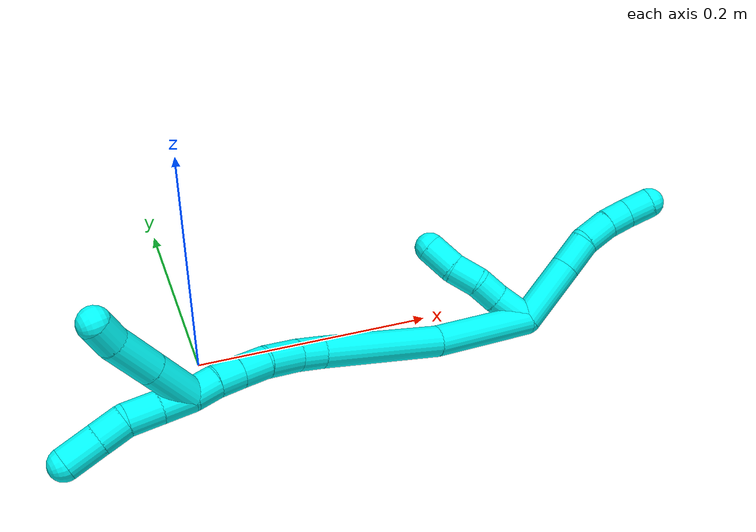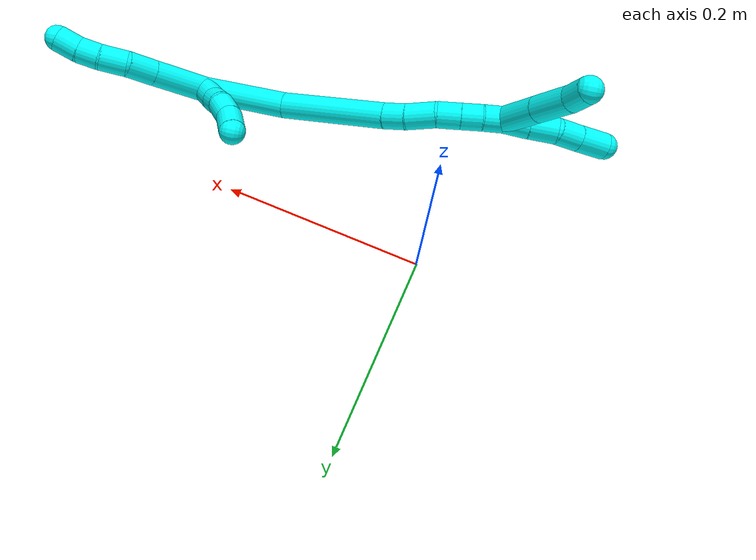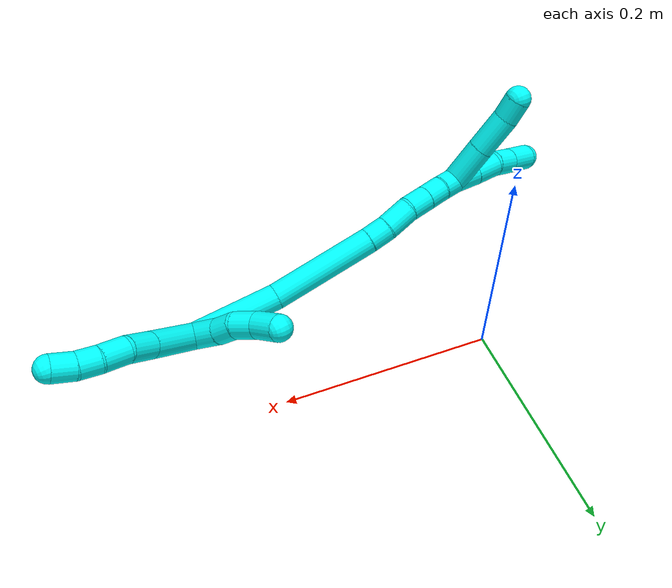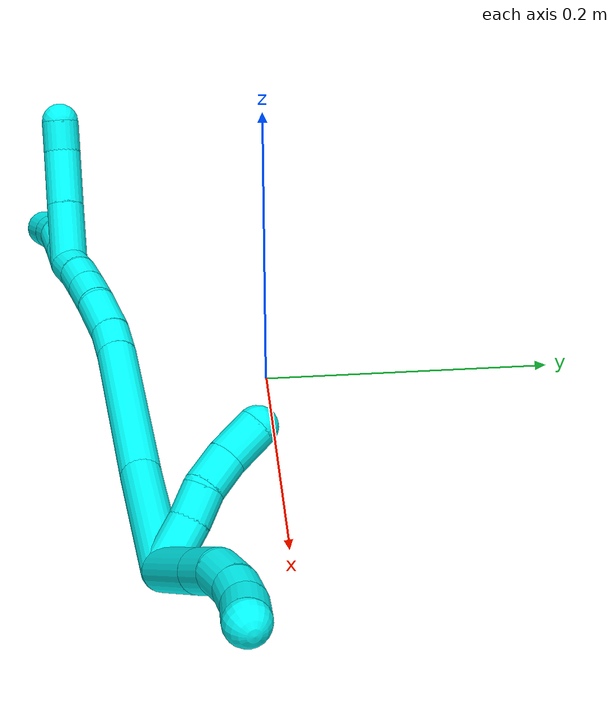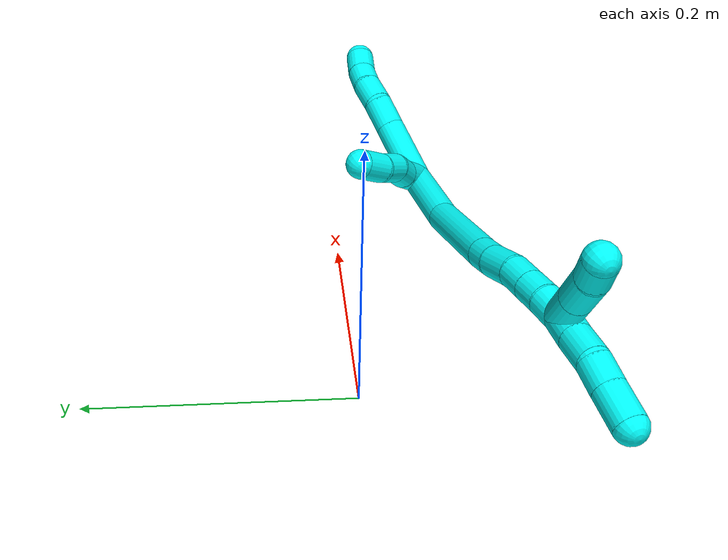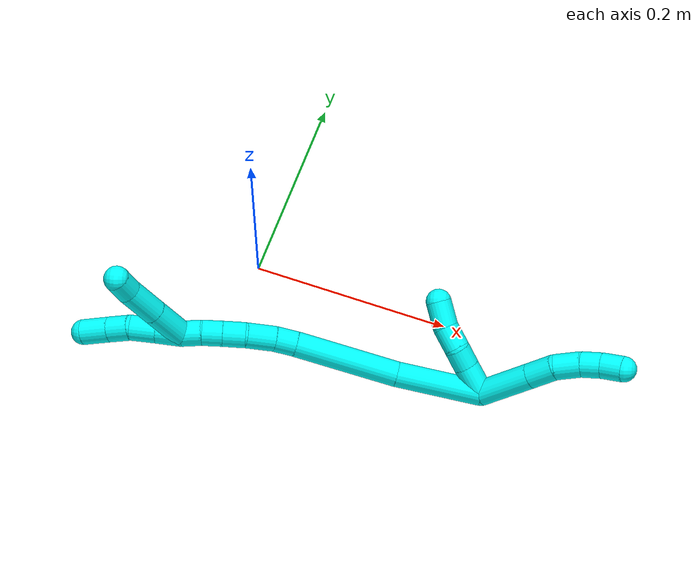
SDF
<sdf version="1.7">
 <world name="default">
  <model name="3">
   <static>0</static>
   <link name="3">
    <collision name="collision-cylinder-e_1_2_8">
     <pose>-0.011624 0.007881 0.023738 -0.32054 -0.43503 0.071425</pose>
     <geometry><cylinder><radius>0.0125</radius><length>0.055161</length></cylinder></geometry>
     <surface>
      <friction><ode><mu>1.16</mu><mu2>1.16</mu2><slip1>0</slip1><slip2>0</slip2></ode></friction>
      <contact><ode><kp>1e+06</kp><kd>1</kd><max_vel>0</max_vel><min_depth>0.001</min_depth></ode></contact>
     </surface>
    </collision>
    <visual name="visual-cylinder-e_1_2_8">
     <pose>-0.011624 0.007881 0.023738 -0.32054 -0.43503 0.071425</pose>
     <geometry><cylinder><radius>0.0125</radius><length>0.055161</length></cylinder></geometry>
     <material><ambient>0.003922 1 0.996078 1</ambient></material>
    </visual>
    <collision name="collision-cylinder-e_2_8_9">
     <pose>-0.029123 0.019607 0.059077 -0.320095 -0.448094 0.073537</pose>
     <geometry><cylinder><radius>0.0125</radius><length>0.027123</length></cylinder></geometry>
     <surface>
      <friction><ode><mu>1.16</mu><mu2>1.16</mu2><slip1>0</slip1><slip2>0</slip2></ode></friction>
      <contact><ode><kp>1e+06</kp><kd>1</kd><max_vel>0</max_vel><min_depth>0.001</min_depth></ode></contact>
     </surface>
    </collision>
    <visual name="visual-cylinder-e_2_8_9">
     <pose>-0.029123 0.019607 0.059077 -0.320095 -0.448094 0.073537</pose>
     <geometry><cylinder><radius>0.0125</radius><length>0.027123</length></cylinder></geometry>
     <material><ambient>0.003922 1 0.996078 1</ambient></material>
    </visual>
    <collision name="collision-cylinder-e_3_9_10">
     <pose>-0.037426 0.025231 0.083221 -0.140814 -0.189348 0.013393</pose>
     <geometry><cylinder><radius>0.0125</radius><length>0.025797</length></cylinder></geometry>
     <surface>
      <friction><ode><mu>1.16</mu><mu2>1.16</mu2><slip1>0</slip1><slip2>0</slip2></ode></friction>
      <contact><ode><kp>1e+06</kp><kd>1</kd><max_vel>0</max_vel><min_depth>0.001</min_depth></ode></contact>
     </surface>
    </collision>
    <visual name="visual-cylinder-e_3_9_10">
     <pose>-0.037426 0.025231 0.083221 -0.140814 -0.189348 0.013393</pose>
     <geometry><cylinder><radius>0.0125</radius><length>0.025797</length></cylinder></geometry>
     <material><ambient>0.003922 1 0.996078 1</ambient></material>
    </visual>
    <collision name="collision-cylinder-e_4_10_11">
     <pose>-0.041476 0.026746 0.105675 0.026494 -0.162191 -0.002153</pose>
     <geometry><cylinder><radius>0.0125</radius><length>0.020093</length></cylinder></geometry>
     <surface>
      <friction><ode><mu>1.16</mu><mu2>1.16</mu2><slip1>0</slip1><slip2>0</slip2></ode></friction>
      <contact><ode><kp>1e+06</kp><kd>1</kd><max_vel>0</max_vel><min_depth>0.001</min_depth></ode></contact>
     </surface>
    </collision>
    <visual name="visual-cylinder-e_4_10_11">
     <pose>-0.041476 0.026746 0.105675 0.026494 -0.162191 -0.002153</pose>
     <geometry><cylinder><radius>0.0125</radius><length>0.020093</length></cylinder></geometry>
     <material><ambient>0.003922 1 0.996078 1</ambient></material>
    </visual>
    <collision name="collision-cylinder-e_5_11_6">
     <pose>-0.046131 0.024827 0.125938 0.158733 -0.281678 -0.022551</pose>
     <geometry><cylinder><radius>0.0125</radius><length>0.021826</length></cylinder></geometry>
     <surface>
      <friction><ode><mu>1.16</mu><mu2>1.16</mu2><slip1>0</slip1><slip2>0</slip2></ode></friction>
      <contact><ode><kp>1e+06</kp><kd>1</kd><max_vel>0</max_vel><min_depth>0.001</min_depth></ode></contact>
     </surface>
    </collision>
    <visual name="visual-cylinder-e_5_11_6">
     <pose>-0.046131 0.024827 0.125938 0.158733 -0.281678 -0.022551</pose>
     <geometry><cylinder><radius>0.0125</radius><length>0.021826</length></cylinder></geometry>
     <material><ambient>0.003922 1 0.996078 1</ambient></material>
    </visual>
    <collision name="collision-cylinder-e_1_2_12">
     <pose>-0.005845 0.01174 -0.007773 -2.15561 -0.393486 0.710538</pose>
     <geometry><cylinder><radius>0.0125</radius><length>0.030491</length></cylinder></geometry>
     <surface>
      <friction><ode><mu>1.16</mu><mu2>1.16</mu2><slip1>0</slip1><slip2>0</slip2></ode></friction>
      <contact><ode><kp>1e+06</kp><kd>1</kd><max_vel>0</max_vel><min_depth>0.001</min_depth></ode></contact>
     </surface>
    </collision>
    <visual name="visual-cylinder-e_1_2_12">
     <pose>-0.005845 0.01174 -0.007773 -2.15561 -0.393486 0.710538</pose>
     <geometry><cylinder><radius>0.0125</radius><length>0.030491</length></cylinder></geometry>
     <material><ambient>0.003922 1 0.996078 1</ambient></material>
    </visual>
    <collision name="collision-cylinder-e_2_12_13">
     <pose>-0.01683 0.030863 -0.02038 -2.15054 -0.527399 0.926507</pose>
     <geometry><cylinder><radius>0.0125</radius><length>0.020422</length></cylinder></geometry>
     <surface>
      <friction><ode><mu>1.16</mu><mu2>1.16</mu2><slip1>0</slip1><slip2>0</slip2></ode></friction>
      <contact><ode><kp>1e+06</kp><kd>1</kd><max_vel>0</max_vel><min_depth>0.001</min_depth></ode></contact>
     </surface>
    </collision>
    <visual name="visual-cylinder-e_2_12_13">
     <pose>-0.01683 0.030863 -0.02038 -2.15054 -0.527399 0.926507</pose>
     <geometry><cylinder><radius>0.0125</radius><length>0.020422</length></cylinder></geometry>
     <material><ambient>0.003922 1 0.996078 1</ambient></material>
    </visual>
    <collision name="collision-cylinder-e_3_13_14">
     <pose>-0.024513 0.04782 -0.031364 -2.14176 -0.219948 0.398948</pose>
     <geometry><cylinder><radius>0.0125</radius><length>0.023322</length></cylinder></geometry>
     <surface>
      <friction><ode><mu>1.16</mu><mu2>1.16</mu2><slip1>0</slip1><slip2>0</slip2></ode></friction>
      <contact><ode><kp>1e+06</kp><kd>1</kd><max_vel>0</max_vel><min_depth>0.001</min_depth></ode></contact>
     </surface>
    </collision>
    <visual name="visual-cylinder-e_3_13_14">
     <pose>-0.024513 0.04782 -0.031364 -2.14176 -0.219948 0.398948</pose>
     <geometry><cylinder><radius>0.0125</radius><length>0.023322</length></cylinder></geometry>
     <material><ambient>0.003922 1 0.996078 1</ambient></material>
    </visual>
    <collision name="collision-cylinder-e_4_14_5">
     <pose>-0.030241 0.069181 -0.041625 -1.90635 -0.249722 0.34979</pose>
     <geometry><cylinder><radius>0.0125</radius><length>0.025764</length></cylinder></geometry>
     <surface>
      <friction><ode><mu>1.16</mu><mu2>1.16</mu2><slip1>0</slip1><slip2>0</slip2></ode></friction>
      <contact><ode><kp>1e+06</kp><kd>1</kd><max_vel>0</max_vel><min_depth>0.001</min_depth></ode></contact>
     </surface>
    </collision>
    <visual name="visual-cylinder-e_4_14_5">
     <pose>-0.030241 0.069181 -0.041625 -1.90635 -0.249722 0.34979</pose>
     <geometry><cylinder><radius>0.0125</radius><length>0.025764</length></cylinder></geometry>
     <material><ambient>0.003922 1 0.996078 1</ambient></material>
    </visual>
    <collision name="collision-cylinder-e_1_2_15">
     <pose>-0.005515 0.005419 -0.041475 -3.01168 -0.131093 1.57985</pose>
     <geometry><cylinder><radius>0.0125</radius><length>0.08438</length></cylinder></geometry>
     <surface>
      <friction><ode><mu>1.16</mu><mu2>1.16</mu2><slip1>0</slip1><slip2>0</slip2></ode></friction>
      <contact><ode><kp>1e+06</kp><kd>1</kd><max_vel>0</max_vel><min_depth>0.001</min_depth></ode></contact>
     </surface>
    </collision>
    <visual name="visual-cylinder-e_1_2_15">
     <pose>-0.005515 0.005419 -0.041475 -3.01168 -0.131093 1.57985</pose>
     <geometry><cylinder><radius>0.0125</radius><length>0.08438</length></cylinder></geometry>
     <material><ambient>0.003922 1 0.996078 1</ambient></material>
    </visual>
    <collision name="collision-cylinder-e_2_15_16">
     <pose>-0.02574 0.019461 -0.131783 -2.9668 -0.288384 2.0557</pose>
     <geometry><cylinder><radius>0.0125</radius><length>0.103449</length></cylinder></geometry>
     <surface>
      <friction><ode><mu>1.16</mu><mu2>1.16</mu2><slip1>0</slip1><slip2>0</slip2></ode></friction>
      <contact><ode><kp>1e+06</kp><kd>1</kd><max_vel>0</max_vel><min_depth>0.001</min_depth></ode></contact>
     </surface>
    </collision>
    <visual name="visual-cylinder-e_2_15_16">
     <pose>-0.02574 0.019461 -0.131783 -2.9668 -0.288384 2.0557</pose>
     <geometry><cylinder><radius>0.0125</radius><length>0.103449</length></cylinder></geometry>
     <material><ambient>0.003922 1 0.996078 1</ambient></material>
    </visual>
    <collision name="collision-cylinder-e_3_16_17">
     <pose>-0.043691 0.029267 -0.190546 -3.02312 -0.313368 2.42336</pose>
     <geometry><cylinder><radius>0.0125</radius><length>0.021024</length></cylinder></geometry>
     <surface>
      <friction><ode><mu>1.16</mu><mu2>1.16</mu2><slip1>0</slip1><slip2>0</slip2></ode></friction>
      <contact><ode><kp>1e+06</kp><kd>1</kd><max_vel>0</max_vel><min_depth>0.001</min_depth></ode></contact>
     </surface>
    </collision>
    <visual name="visual-cylinder-e_3_16_17">
     <pose>-0.043691 0.029267 -0.190546 -3.02312 -0.313368 2.42336</pose>
     <geometry><cylinder><radius>0.0125</radius><length>0.021024</length></cylinder></geometry>
     <material><ambient>0.003922 1 0.996078 1</ambient></material>
    </visual>
    <collision name="collision-cylinder-e_4_17_18">
     <pose>-0.051908 0.030242 -0.213969 3.12627 -0.353297 -3.05579</pose>
     <geometry><cylinder><radius>0.0125</radius><length>0.028766</length></cylinder></geometry>
     <surface>
      <friction><ode><mu>1.16</mu><mu2>1.16</mu2><slip1>0</slip1><slip2>0</slip2></ode></friction>
      <contact><ode><kp>1e+06</kp><kd>1</kd><max_vel>0</max_vel><min_depth>0.001</min_depth></ode></contact>
     </surface>
    </collision>
    <visual name="visual-cylinder-e_4_17_18">
     <pose>-0.051908 0.030242 -0.213969 3.12627 -0.353297 -3.05579</pose>
     <geometry><cylinder><radius>0.0125</radius><length>0.028766</length></cylinder></geometry>
     <material><ambient>0.003922 1 0.996078 1</ambient></material>
    </visual>
    <collision name="collision-cylinder-e_5_18_19">
     <pose>-0.058506 0.029668 -0.23849 3.10835 -0.145876 -2.69417</pose>
     <geometry><cylinder><radius>0.0125</radius><length>0.022307</length></cylinder></geometry>
     <surface>
      <friction><ode><mu>1.16</mu><mu2>1.16</mu2><slip1>0</slip1><slip2>0</slip2></ode></friction>
      <contact><ode><kp>1e+06</kp><kd>1</kd><max_vel>0</max_vel><min_depth>0.001</min_depth></ode></contact>
     </surface>
    </collision>
    <visual name="visual-cylinder-e_5_18_19">
     <pose>-0.058506 0.029668 -0.23849 3.10835 -0.145876 -2.69417</pose>
     <geometry><cylinder><radius>0.0125</radius><length>0.022307</length></cylinder></geometry>
     <material><ambient>0.003922 1 0.996078 1</ambient></material>
    </visual>
    <collision name="collision-cylinder-e_6_19_20">
     <pose>-0.061523 0.028816 -0.259437 3.09267 -0.139711 -2.46882</pose>
     <geometry><cylinder><radius>0.0125</radius><length>0.020055</length></cylinder></geometry>
     <surface>
      <friction><ode><mu>1.16</mu><mu2>1.16</mu2><slip1>0</slip1><slip2>0</slip2></ode></friction>
      <contact><ode><kp>1e+06</kp><kd>1</kd><max_vel>0</max_vel><min_depth>0.001</min_depth></ode></contact>
     </surface>
    </collision>
    <visual name="visual-cylinder-e_6_19_20">
     <pose>-0.061523 0.028816 -0.259437 3.09267 -0.139711 -2.46882</pose>
     <geometry><cylinder><radius>0.0125</radius><length>0.020055</length></cylinder></geometry>
     <material><ambient>0.003922 1 0.996078 1</ambient></material>
    </visual>
    <collision name="collision-cylinder-e_7_20_1">
     <pose>-0.063234 0.027102 -0.279284 3.01851 -0.031439 -0.499574</pose>
     <geometry><cylinder><radius>0.0125</radius><length>0.020021</length></cylinder></geometry>
     <surface>
      <friction><ode><mu>1.16</mu><mu2>1.16</mu2><slip1>0</slip1><slip2>0</slip2></ode></friction>
      <contact><ode><kp>1e+06</kp><kd>1</kd><max_vel>0</max_vel><min_depth>0.001</min_depth></ode></contact>
     </surface>
    </collision>
    <visual name="visual-cylinder-e_7_20_1">
     <pose>-0.063234 0.027102 -0.279284 3.01851 -0.031439 -0.499574</pose>
     <geometry><cylinder><radius>0.0125</radius><length>0.020021</length></cylinder></geometry>
     <material><ambient>0.003922 1 0.996078 1</ambient></material>
    </visual>
    <collision name="collision-cylinder-e_1_1_21">
     <pose>-0.063734 0.026594 -0.301276 -3.08193 -0.015308 0.50218</pose>
     <geometry><cylinder><radius>0.0125</radius><length>0.024168</length></cylinder></geometry>
     <surface>
      <friction><ode><mu>1.16</mu><mu2>1.16</mu2><slip1>0</slip1><slip2>0</slip2></ode></friction>
      <contact><ode><kp>1e+06</kp><kd>1</kd><max_vel>0</max_vel><min_depth>0.001</min_depth></ode></contact>
     </surface>
    </collision>
    <visual name="visual-cylinder-e_1_1_21">
     <pose>-0.063734 0.026594 -0.301276 -3.08193 -0.015308 0.50218</pose>
     <geometry><cylinder><radius>0.0125</radius><length>0.024168</length></cylinder></geometry>
     <material><ambient>0.003922 1 0.996078 1</ambient></material>
    </visual>
    <collision name="collision-cylinder-e_2_21_22">
     <pose>-0.064593 0.02778 -0.326208 -3.10542 -0.052256 1.93077</pose>
     <geometry><cylinder><radius>0.0125</radius><length>0.025794</length></cylinder></geometry>
     <surface>
      <friction><ode><mu>1.16</mu><mu2>1.16</mu2><slip1>0</slip1><slip2>0</slip2></ode></friction>
      <contact><ode><kp>1e+06</kp><kd>1</kd><max_vel>0</max_vel><min_depth>0.001</min_depth></ode></contact>
     </surface>
    </collision>
    <visual name="visual-cylinder-e_2_21_22">
     <pose>-0.064593 0.02778 -0.326208 -3.10542 -0.052256 1.93077</pose>
     <geometry><cylinder><radius>0.0125</radius><length>0.025794</length></cylinder></geometry>
     <material><ambient>0.003922 1 0.996078 1</ambient></material>
    </visual>
    <collision name="collision-cylinder-e_3_22_23">
     <pose>-0.062631 0.027207 -0.349684 3.04398 0.242422 2.37883</pose>
     <geometry><cylinder><radius>0.0125</radius><length>0.021954</length></cylinder></geometry>
     <surface>
      <friction><ode><mu>1.16</mu><mu2>1.16</mu2><slip1>0</slip1><slip2>0</slip2></ode></friction>
      <contact><ode><kp>1e+06</kp><kd>1</kd><max_vel>0</max_vel><min_depth>0.001</min_depth></ode></contact>
     </surface>
    </collision>
    <visual name="visual-cylinder-e_3_22_23">
     <pose>-0.062631 0.027207 -0.349684 3.04398 0.242422 2.37883</pose>
     <geometry><cylinder><radius>0.0125</radius><length>0.021954</length></cylinder></geometry>
     <material><ambient>0.003922 1 0.996078 1</ambient></material>
    </visual>
    <collision name="collision-cylinder-e_4_23_4">
     <pose>-0.056859 0.024626 -0.373889 3.02863 0.225313 2.21464</pose>
     <geometry><cylinder><radius>0.0125</radius><length>0.028084</length></cylinder></geometry>
     <surface>
      <friction><ode><mu>1.16</mu><mu2>1.16</mu2><slip1>0</slip1><slip2>0</slip2></ode></friction>
      <contact><ode><kp>1e+06</kp><kd>1</kd><max_vel>0</max_vel><min_depth>0.001</min_depth></ode></contact>
     </surface>
    </collision>
    <visual name="visual-cylinder-e_4_23_4">
     <pose>-0.056859 0.024626 -0.373889 3.02863 0.225313 2.21464</pose>
     <geometry><cylinder><radius>0.0125</radius><length>0.028084</length></cylinder></geometry>
     <material><ambient>0.003922 1 0.996078 1</ambient></material>
    </visual>
    <collision name="collision-cylinder-e_1_1_24">
     <pose>-0.079522 0.032345 -0.30031 -2.61355 -0.893538 2.11412</pose>
     <geometry><cylinder><radius>0.0125</radius><length>0.040994</length></cylinder></geometry>
     <surface>
      <friction><ode><mu>1.16</mu><mu2>1.16</mu2><slip1>0</slip1><slip2>0</slip2></ode></friction>
      <contact><ode><kp>1e+06</kp><kd>1</kd><max_vel>0</max_vel><min_depth>0.001</min_depth></ode></contact>
     </surface>
    </collision>
    <visual name="visual-cylinder-e_1_1_24">
     <pose>-0.079522 0.032345 -0.30031 -2.61355 -0.893538 2.11412</pose>
     <geometry><cylinder><radius>0.0125</radius><length>0.040994</length></cylinder></geometry>
     <material><ambient>0.003922 1 0.996078 1</ambient></material>
    </visual>
    <collision name="collision-cylinder-e_2_24_25">
     <pose>-0.110131 0.04487 -0.321619 -2.6066 -0.889203 2.09752</pose>
     <geometry><cylinder><radius>0.0125</radius><length>0.037692</length></cylinder></geometry>
     <surface>
      <friction><ode><mu>1.16</mu><mu2>1.16</mu2><slip1>0</slip1><slip2>0</slip2></ode></friction>
      <contact><ode><kp>1e+06</kp><kd>1</kd><max_vel>0</max_vel><min_depth>0.001</min_depth></ode></contact>
     </surface>
    </collision>
    <visual name="visual-cylinder-e_2_24_25">
     <pose>-0.110131 0.04487 -0.321619 -2.6066 -0.889203 2.09752</pose>
     <geometry><cylinder><radius>0.0125</radius><length>0.037692</length></cylinder></geometry>
     <material><ambient>0.003922 1 0.996078 1</ambient></material>
    </visual>
    <collision name="collision-cylinder-e_3_25_3">
     <pose>-0.133987 0.054266 -0.336001 -2.46553 -1.04574 2.04629</pose>
     <geometry><cylinder><radius>0.0125</radius><length>0.021314</length></cylinder></geometry>
     <surface>
      <friction><ode><mu>1.16</mu><mu2>1.16</mu2><slip1>0</slip1><slip2>0</slip2></ode></friction>
      <contact><ode><kp>1e+06</kp><kd>1</kd><max_vel>0</max_vel><min_depth>0.001</min_depth></ode></contact>
     </surface>
    </collision>
    <visual name="visual-cylinder-e_3_25_3">
     <pose>-0.133987 0.054266 -0.336001 -2.46553 -1.04574 2.04629</pose>
     <geometry><cylinder><radius>0.0125</radius><length>0.021314</length></cylinder></geometry>
     <material><ambient>0.003922 1 0.996078 1</ambient></material>
    </visual>
    <collision name="collision-sphere-3">
     <pose>-0.143209 0.057609 -0.340168 0 -0 0</pose>
     <geometry><sphere><radius>0.0125</radius></sphere></geometry>
     <surface>
      <friction><ode><mu>1.16</mu><mu2>1.16</mu2><slip1>0</slip1><slip2>0</slip2></ode></friction>
      <contact><ode><kp>1e+06</kp><kd>1</kd><max_vel>0</max_vel><min_depth>0.001</min_depth></ode></contact>
     </surface>
    </collision>
    <visual name="visual-sphere-3">
     <pose>-0.143209 0.057609 -0.340168 0 -0 0</pose>
     <geometry><sphere><radius>0.0125</radius></sphere></geometry>
     <material><ambient>0.003922 1 0.996078 1</ambient></material>
    </visual>
    <collision name="collision-sphere-25">
     <pose>-0.124766 0.050924 -0.331834 0 -0 0</pose>
     <geometry><sphere><radius>0.0125</radius></sphere></geometry>
     <surface>
      <friction><ode><mu>1.16</mu><mu2>1.16</mu2><slip1>0</slip1><slip2>0</slip2></ode></friction>
      <contact><ode><kp>1e+06</kp><kd>1</kd><max_vel>0</max_vel><min_depth>0.001</min_depth></ode></contact>
     </surface>
    </collision>
    <visual name="visual-sphere-25">
     <pose>-0.124766 0.050924 -0.331834 0 -0 0</pose>
     <geometry><sphere><radius>0.0125</radius></sphere></geometry>
     <material><ambient>0.003922 1 0.996078 1</ambient></material>
    </visual>
    <collision name="collision-sphere-24">
     <pose>-0.095496 0.038817 -0.311405 0 -0 0</pose>
     <geometry><sphere><radius>0.0125</radius></sphere></geometry>
     <surface>
      <friction><ode><mu>1.16</mu><mu2>1.16</mu2><slip1>0</slip1><slip2>0</slip2></ode></friction>
      <contact><ode><kp>1e+06</kp><kd>1</kd><max_vel>0</max_vel><min_depth>0.001</min_depth></ode></contact>
     </surface>
    </collision>
    <visual name="visual-sphere-24">
     <pose>-0.095496 0.038817 -0.311405 0 -0 0</pose>
     <geometry><sphere><radius>0.0125</radius></sphere></geometry>
     <material><ambient>0.003922 1 0.996078 1</ambient></material>
    </visual>
    <collision name="collision-sphere-4">
     <pose>-0.053722 0.023083 -0.387489 0 -0 0</pose>
     <geometry><sphere><radius>0.0125</radius></sphere></geometry>
     <surface>
      <friction><ode><mu>1.16</mu><mu2>1.16</mu2><slip1>0</slip1><slip2>0</slip2></ode></friction>
      <contact><ode><kp>1e+06</kp><kd>1</kd><max_vel>0</max_vel><min_depth>0.001</min_depth></ode></contact>
     </surface>
    </collision>
    <visual name="visual-sphere-4">
     <pose>-0.053722 0.023083 -0.387489 0 -0 0</pose>
     <geometry><sphere><radius>0.0125</radius></sphere></geometry>
     <material><ambient>0.003922 1 0.996078 1</ambient></material>
    </visual>
    <collision name="collision-sphere-23">
     <pose>-0.059996 0.026169 -0.360289 0 -0 0</pose>
     <geometry><sphere><radius>0.0125</radius></sphere></geometry>
     <surface>
      <friction><ode><mu>1.16</mu><mu2>1.16</mu2><slip1>0</slip1><slip2>0</slip2></ode></friction>
      <contact><ode><kp>1e+06</kp><kd>1</kd><max_vel>0</max_vel><min_depth>0.001</min_depth></ode></contact>
     </surface>
    </collision>
    <visual name="visual-sphere-23">
     <pose>-0.059996 0.026169 -0.360289 0 -0 0</pose>
     <geometry><sphere><radius>0.0125</radius></sphere></geometry>
     <material><ambient>0.003922 1 0.996078 1</ambient></material>
    </visual>
    <collision name="collision-sphere-22">
     <pose>-0.065266 0.028246 -0.339078 0 -0 0</pose>
     <geometry><sphere><radius>0.0125</radius></sphere></geometry>
     <surface>
      <friction><ode><mu>1.16</mu><mu2>1.16</mu2><slip1>0</slip1><slip2>0</slip2></ode></friction>
      <contact><ode><kp>1e+06</kp><kd>1</kd><max_vel>0</max_vel><min_depth>0.001</min_depth></ode></contact>
     </surface>
    </collision>
    <visual name="visual-sphere-22">
     <pose>-0.065266 0.028246 -0.339078 0 -0 0</pose>
     <geometry><sphere><radius>0.0125</radius></sphere></geometry>
     <material><ambient>0.003922 1 0.996078 1</ambient></material>
    </visual>
    <collision name="collision-sphere-21">
     <pose>-0.063919 0.027314 -0.313337 0 -0 0</pose>
     <geometry><sphere><radius>0.0125</radius></sphere></geometry>
     <surface>
      <friction><ode><mu>1.16</mu><mu2>1.16</mu2><slip1>0</slip1><slip2>0</slip2></ode></friction>
      <contact><ode><kp>1e+06</kp><kd>1</kd><max_vel>0</max_vel><min_depth>0.001</min_depth></ode></contact>
     </surface>
    </collision>
    <visual name="visual-sphere-21">
     <pose>-0.063919 0.027314 -0.313337 0 -0 0</pose>
     <geometry><sphere><radius>0.0125</radius></sphere></geometry>
     <material><ambient>0.003922 1 0.996078 1</ambient></material>
    </visual>
    <collision name="collision-sphere-1">
     <pose>-0.063549 0.025873 -0.289214 0 -0 0</pose>
     <geometry><sphere><radius>0.0125</radius></sphere></geometry>
     <surface>
      <friction><ode><mu>1.16</mu><mu2>1.16</mu2><slip1>0</slip1><slip2>0</slip2></ode></friction>
      <contact><ode><kp>1e+06</kp><kd>1</kd><max_vel>0</max_vel><min_depth>0.001</min_depth></ode></contact>
     </surface>
    </collision>
    <visual name="visual-sphere-1">
     <pose>-0.063549 0.025873 -0.289214 0 -0 0</pose>
     <geometry><sphere><radius>0.0125</radius></sphere></geometry>
     <material><ambient>0.003922 1 0.996078 1</ambient></material>
    </visual>
    <collision name="collision-sphere-6">
     <pose>-0.049165 0.02317 0.136289 0 -0 0</pose>
     <geometry><sphere><radius>0.0125</radius></sphere></geometry>
     <surface>
      <friction><ode><mu>1.16</mu><mu2>1.16</mu2><slip1>0</slip1><slip2>0</slip2></ode></friction>
      <contact><ode><kp>1e+06</kp><kd>1</kd><max_vel>0</max_vel><min_depth>0.001</min_depth></ode></contact>
     </surface>
    </collision>
    <visual name="visual-sphere-6">
     <pose>-0.049165 0.02317 0.136289 0 -0 0</pose>
     <geometry><sphere><radius>0.0125</radius></sphere></geometry>
     <material><ambient>0.003922 1 0.996078 1</ambient></material>
    </visual>
    <collision name="collision-sphere-11">
     <pose>-0.043098 0.026484 0.115587 0 -0 0</pose>
     <geometry><sphere><radius>0.0125</radius></sphere></geometry>
     <surface>
      <friction><ode><mu>1.16</mu><mu2>1.16</mu2><slip1>0</slip1><slip2>0</slip2></ode></friction>
      <contact><ode><kp>1e+06</kp><kd>1</kd><max_vel>0</max_vel><min_depth>0.001</min_depth></ode></contact>
     </surface>
    </collision>
    <visual name="visual-sphere-11">
     <pose>-0.043098 0.026484 0.115587 0 -0 0</pose>
     <geometry><sphere><radius>0.0125</radius></sphere></geometry>
     <material><ambient>0.003922 1 0.996078 1</ambient></material>
    </visual>
    <collision name="collision-sphere-10">
     <pose>-0.039853 0.027009 0.095764 0 -0 0</pose>
     <geometry><sphere><radius>0.0125</radius></sphere></geometry>
     <surface>
      <friction><ode><mu>1.16</mu><mu2>1.16</mu2><slip1>0</slip1><slip2>0</slip2></ode></friction>
      <contact><ode><kp>1e+06</kp><kd>1</kd><max_vel>0</max_vel><min_depth>0.001</min_depth></ode></contact>
     </surface>
    </collision>
    <visual name="visual-sphere-10">
     <pose>-0.039853 0.027009 0.095764 0 -0 0</pose>
     <geometry><sphere><radius>0.0125</radius></sphere></geometry>
     <material><ambient>0.003922 1 0.996078 1</ambient></material>
    </visual>
    <collision name="collision-sphere-9">
     <pose>-0.034998 0.023453 0.070679 0 -0 0</pose>
     <geometry><sphere><radius>0.0125</radius></sphere></geometry>
     <surface>
      <friction><ode><mu>1.16</mu><mu2>1.16</mu2><slip1>0</slip1><slip2>0</slip2></ode></friction>
      <contact><ode><kp>1e+06</kp><kd>1</kd><max_vel>0</max_vel><min_depth>0.001</min_depth></ode></contact>
     </surface>
    </collision>
    <visual name="visual-sphere-9">
     <pose>-0.034998 0.023453 0.070679 0 -0 0</pose>
     <geometry><sphere><radius>0.0125</radius></sphere></geometry>
     <material><ambient>0.003922 1 0.996078 1</ambient></material>
    </visual>
    <collision name="collision-sphere-2">
     <geometry><sphere><radius>0.0125</radius></sphere></geometry>
     <surface>
      <friction><ode><mu>1.16</mu><mu2>1.16</mu2><slip1>0</slip1><slip2>0</slip2></ode></friction>
      <contact><ode><kp>1e+06</kp><kd>1</kd><max_vel>0</max_vel><min_depth>0.001</min_depth></ode></contact>
     </surface>
    </collision>
    <visual name="visual-sphere-2">
     <geometry><sphere><radius>0.0125</radius></sphere></geometry>
     <material><ambient>0.003922 1 0.996078 1</ambient></material>
    </visual>
    <collision name="collision-sphere-19">
     <pose>-0.060127 0.029301 -0.249519 0 -0 0</pose>
     <geometry><sphere><radius>0.0125</radius></sphere></geometry>
     <surface>
      <friction><ode><mu>1.16</mu><mu2>1.16</mu2><slip1>0</slip1><slip2>0</slip2></ode></friction>
      <contact><ode><kp>1e+06</kp><kd>1</kd><max_vel>0</max_vel><min_depth>0.001</min_depth></ode></contact>
     </surface>
    </collision>
    <visual name="visual-sphere-19">
     <pose>-0.060127 0.029301 -0.249519 0 -0 0</pose>
     <geometry><sphere><radius>0.0125</radius></sphere></geometry>
     <material><ambient>0.003922 1 0.996078 1</ambient></material>
    </visual>
    <collision name="collision-sphere-8">
     <pose>-0.023247 0.015761 0.047476 0 -0 0</pose>
     <geometry><sphere><radius>0.0125</radius></sphere></geometry>
     <surface>
      <friction><ode><mu>1.16</mu><mu2>1.16</mu2><slip1>0</slip1><slip2>0</slip2></ode></friction>
      <contact><ode><kp>1e+06</kp><kd>1</kd><max_vel>0</max_vel><min_depth>0.001</min_depth></ode></contact>
     </surface>
    </collision>
    <visual name="visual-sphere-8">
     <pose>-0.023247 0.015761 0.047476 0 -0 0</pose>
     <geometry><sphere><radius>0.0125</radius></sphere></geometry>
     <material><ambient>0.003922 1 0.996078 1</ambient></material>
    </visual>
    <collision name="collision-sphere-12">
     <pose>-0.011691 0.023481 -0.015546 0 -0 0</pose>
     <geometry><sphere><radius>0.0125</radius></sphere></geometry>
     <surface>
      <friction><ode><mu>1.16</mu><mu2>1.16</mu2><slip1>0</slip1><slip2>0</slip2></ode></friction>
      <contact><ode><kp>1e+06</kp><kd>1</kd><max_vel>0</max_vel><min_depth>0.001</min_depth></ode></contact>
     </surface>
    </collision>
    <visual name="visual-sphere-12">
     <pose>-0.011691 0.023481 -0.015546 0 -0 0</pose>
     <geometry><sphere><radius>0.0125</radius></sphere></geometry>
     <material><ambient>0.003922 1 0.996078 1</ambient></material>
    </visual>
    <collision name="collision-sphere-13">
     <pose>-0.021969 0.038245 -0.025213 0 -0 0</pose>
     <geometry><sphere><radius>0.0125</radius></sphere></geometry>
     <surface>
      <friction><ode><mu>1.16</mu><mu2>1.16</mu2><slip1>0</slip1><slip2>0</slip2></ode></friction>
      <contact><ode><kp>1e+06</kp><kd>1</kd><max_vel>0</max_vel><min_depth>0.001</min_depth></ode></contact>
     </surface>
    </collision>
    <visual name="visual-sphere-13">
     <pose>-0.021969 0.038245 -0.025213 0 -0 0</pose>
     <geometry><sphere><radius>0.0125</radius></sphere></geometry>
     <material><ambient>0.003922 1 0.996078 1</ambient></material>
    </visual>
    <collision name="collision-sphere-14">
     <pose>-0.027057 0.057395 -0.037514 0 -0 0</pose>
     <geometry><sphere><radius>0.0125</radius></sphere></geometry>
     <surface>
      <friction><ode><mu>1.16</mu><mu2>1.16</mu2><slip1>0</slip1><slip2>0</slip2></ode></friction>
      <contact><ode><kp>1e+06</kp><kd>1</kd><max_vel>0</max_vel><min_depth>0.001</min_depth></ode></contact>
     </surface>
    </collision>
    <visual name="visual-sphere-14">
     <pose>-0.027057 0.057395 -0.037514 0 -0 0</pose>
     <geometry><sphere><radius>0.0125</radius></sphere></geometry>
     <material><ambient>0.003922 1 0.996078 1</ambient></material>
    </visual>
    <collision name="collision-sphere-5">
     <pose>-0.033425 0.080968 -0.045735 0 -0 0</pose>
     <geometry><sphere><radius>0.0125</radius></sphere></geometry>
     <surface>
      <friction><ode><mu>1.16</mu><mu2>1.16</mu2><slip1>0</slip1><slip2>0</slip2></ode></friction>
      <contact><ode><kp>1e+06</kp><kd>1</kd><max_vel>0</max_vel><min_depth>0.001</min_depth></ode></contact>
     </surface>
    </collision>
    <visual name="visual-sphere-5">
     <pose>-0.033425 0.080968 -0.045735 0 -0 0</pose>
     <geometry><sphere><radius>0.0125</radius></sphere></geometry>
     <material><ambient>0.003922 1 0.996078 1</ambient></material>
    </visual>
    <collision name="collision-sphere-15">
     <pose>-0.01103 0.010838 -0.082951 0 -0 0</pose>
     <geometry><sphere><radius>0.0125</radius></sphere></geometry>
     <surface>
      <friction><ode><mu>1.16</mu><mu2>1.16</mu2><slip1>0</slip1><slip2>0</slip2></ode></friction>
      <contact><ode><kp>1e+06</kp><kd>1</kd><max_vel>0</max_vel><min_depth>0.001</min_depth></ode></contact>
     </surface>
    </collision>
    <visual name="visual-sphere-15">
     <pose>-0.01103 0.010838 -0.082951 0 -0 0</pose>
     <geometry><sphere><radius>0.0125</radius></sphere></geometry>
     <material><ambient>0.003922 1 0.996078 1</ambient></material>
    </visual>
    <collision name="collision-sphere-16">
     <pose>-0.040451 0.028085 -0.180616 0 -0 0</pose>
     <geometry><sphere><radius>0.0125</radius></sphere></geometry>
     <surface>
      <friction><ode><mu>1.16</mu><mu2>1.16</mu2><slip1>0</slip1><slip2>0</slip2></ode></friction>
      <contact><ode><kp>1e+06</kp><kd>1</kd><max_vel>0</max_vel><min_depth>0.001</min_depth></ode></contact>
     </surface>
    </collision>
    <visual name="visual-sphere-16">
     <pose>-0.040451 0.028085 -0.180616 0 -0 0</pose>
     <geometry><sphere><radius>0.0125</radius></sphere></geometry>
     <material><ambient>0.003922 1 0.996078 1</ambient></material>
    </visual>
    <collision name="collision-sphere-17">
     <pose>-0.046932 0.030449 -0.200476 0 -0 0</pose>
     <geometry><sphere><radius>0.0125</radius></sphere></geometry>
     <surface>
      <friction><ode><mu>1.16</mu><mu2>1.16</mu2><slip1>0</slip1><slip2>0</slip2></ode></friction>
      <contact><ode><kp>1e+06</kp><kd>1</kd><max_vel>0</max_vel><min_depth>0.001</min_depth></ode></contact>
     </surface>
    </collision>
    <visual name="visual-sphere-17">
     <pose>-0.046932 0.030449 -0.200476 0 -0 0</pose>
     <geometry><sphere><radius>0.0125</radius></sphere></geometry>
     <material><ambient>0.003922 1 0.996078 1</ambient></material>
    </visual>
    <collision name="collision-sphere-18">
     <pose>-0.056885 0.030035 -0.227461 0 -0 0</pose>
     <geometry><sphere><radius>0.0125</radius></sphere></geometry>
     <surface>
      <friction><ode><mu>1.16</mu><mu2>1.16</mu2><slip1>0</slip1><slip2>0</slip2></ode></friction>
      <contact><ode><kp>1e+06</kp><kd>1</kd><max_vel>0</max_vel><min_depth>0.001</min_depth></ode></contact>
     </surface>
    </collision>
    <visual name="visual-sphere-18">
     <pose>-0.056885 0.030035 -0.227461 0 -0 0</pose>
     <geometry><sphere><radius>0.0125</radius></sphere></geometry>
     <material><ambient>0.003922 1 0.996078 1</ambient></material>
    </visual>
    <collision name="collision-sphere-20">
     <pose>-0.06292 0.02833 -0.269354 0 -0 0</pose>
     <geometry><sphere><radius>0.0125</radius></sphere></geometry>
     <surface>
      <friction><ode><mu>1.16</mu><mu2>1.16</mu2><slip1>0</slip1><slip2>0</slip2></ode></friction>
      <contact><ode><kp>1e+06</kp><kd>1</kd><max_vel>0</max_vel><min_depth>0.001</min_depth></ode></contact>
     </surface>
    </collision>
    <visual name="visual-sphere-20">
     <pose>-0.06292 0.02833 -0.269354 0 -0 0</pose>
     <geometry><sphere><radius>0.0125</radius></sphere></geometry>
     <material><ambient>0.003922 1 0.996078 1</ambient></material>
    </visual>
    <inertial>
     <pose>-0.042533 0.025523 -0.135203 0 -0 0</pose>
     <mass>0.75</mass>
     <inertia><ixx>0.000111</ixx><ixy>0</ixy><ixz>0</ixz><iyy>0.000257</iyy><iyz>0</iyz><izz>-8e-06</izz></inertia>
    </inertial>
   </link>
   <pose>0.261689 -0.074807 0.037979 1.27546 1.30693 1.51557</pose>
  </model>
 </world>
</sdf>
